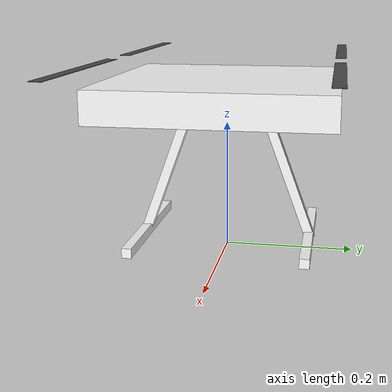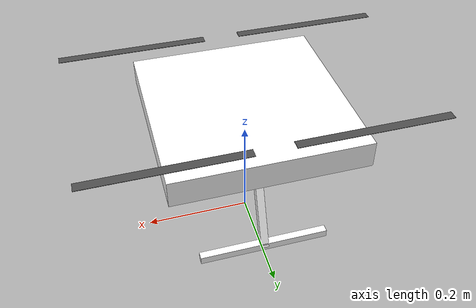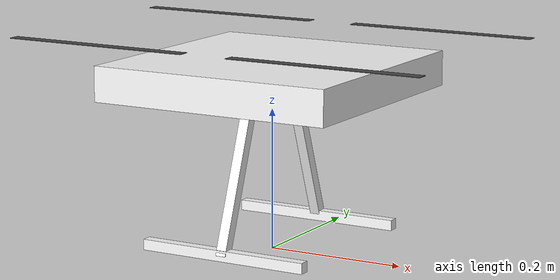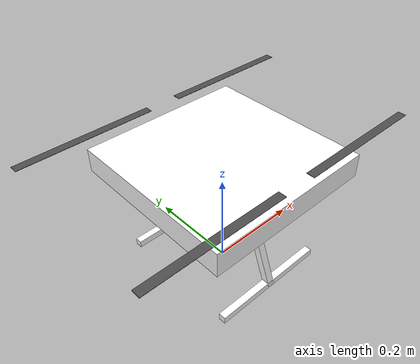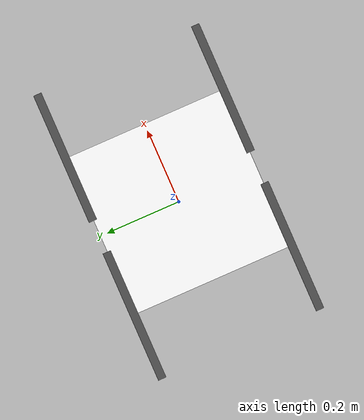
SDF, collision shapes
<?xml version="1.0" encoding="UTF-8"?>
<sdf version='1.9'>
  <model name='x500'>
    <pose>0 0 .24 0 0 0</pose>
    <self_collide>false</self_collide>
    <static>false</static>
    <link name="base_link">
      <inertial>
        <mass>2.0</mass>
        <inertia>
          <ixx>0.02166666666666667</ixx>
          <ixy>0</ixy>
          <ixz>0</ixz>
          <iyy>0.02166666666666667</iyy>
          <iyz>0</iyz>
          <izz>0.04000000000000001</izz>
        </inertia>
      </inertial>
      <gravity>true</gravity>
      <velocity_decay/>
      <visual name="base_link_visual">
        <pose>0 0 .025 0 0 3.141592654</pose>
        <geometry>
          <mesh>
            <scale>1 1 1</scale>
            <uri>meshes/NXP-HGD-CF.dae</uri>
          </mesh>
        </geometry>
      </visual>
      <visual name="5010_motor_base_0">
        <pose>0.174 0.174 .032 0 0 -.45</pose>
        <geometry>
          <mesh>
            <scale>1 1 1</scale>
            <uri>meshes/5010Base.dae</uri>
          </mesh>
        </geometry>
      </visual>
      <visual name="5010_motor_base_1">
        <pose>-0.174 0.174 .032 0 0 -.45</pose>
        <geometry>
          <mesh>
            <scale>1 1 1</scale>
            <uri>meshes/5010Base.dae</uri>
          </mesh>
        </geometry>
      </visual>
      <visual name="5010_motor_base_2">
        <pose>0.174 -0.174 .032 0 0 -.45</pose>
        <geometry>
          <mesh>
            <scale>1 1 1</scale>
            <uri>meshes/5010Base.dae</uri>
          </mesh>
        </geometry>
      </visual>
      <visual name="5010_motor_base_3">
        <pose>-0.174 -0.174 .032 0 0 -.45</pose>
        <geometry>
          <mesh>
            <scale>1 1 1</scale>
            <uri>meshes/5010Base.dae</uri>
          </mesh>
        </geometry>
      </visual>
      <visual name="NXP_FMUK66_FRONT">
        <pose>0.047 .001 .043 1 0 1.57</pose>
        <cast_shadows>false</cast_shadows>
        <geometry>
          <plane>
            <normal>0 0 1</normal>
            <size>.013 .007</size>
          </plane>
        </geometry>
        <material>
          <diffuse>1.0 1.0 1.0</diffuse>
          <specular>1.0 1.0 1.0</specular>
          <pbr>
            <metal>
              <albedo_map>materials/textures/nxp.png</albedo_map>
            </metal>
          </pbr>
        </material>
      </visual>
      <visual name="NXP_FMUK66_TOP">
        <pose>-0.023 0 .0515 0 0 -1.57</pose>
        <cast_shadows>false</cast_shadows>
        <geometry>
          <plane>
            <normal>0 0 1</normal>
            <size>.013 .007</size>
          </plane>
        </geometry>
        <material>
          <diffuse>1.0 1.0 1.0</diffuse>
          <specular>1.0 1.0 1.0</specular>
          <pbr>
            <metal>
              <albedo_map>materials/textures/nxp.png</albedo_map>
            </metal>
          </pbr>
        </material>
      </visual>
      <visual name="RDDRONE_FMUK66_TOP">
        <pose>-.03 0 .0515 0 0 -1.57</pose>
        <cast_shadows>false</cast_shadows>
        <geometry>
          <plane>
            <normal>0 0 1</normal>
            <size>.032 .0034</size>
          </plane>
        </geometry>
        <material>
          <diffuse>1.0 1.0 1.0</diffuse>
          <specular>1.0 1.0 1.0</specular>
          <pbr>
            <metal>
              <albedo_map>materials/textures/rd.png</albedo_map>
            </metal>
          </pbr>
        </material>
      </visual>
      <collision name="base_link_collision_0">
        <pose>0 0 .007 0 0 0</pose>
        <geometry>
          <box>
            <size>0.35355339059327373 0.35355339059327373 0.05</size>
          </box>
        </geometry>
        <surface>
          <contact>
            <ode>
              <min_depth>0.001</min_depth>
              <max_vel>0</max_vel>
            </ode>
          </contact>
          <friction>
            <ode/>
          </friction>
        </surface>
      </collision>
      <collision name="base_link_collision_1">
        <pose>0 -0.098 -.123 -0.35 0 0</pose>
        <geometry>
          <box>
            <size>0.015 0.015 0.21</size>
          </box>
        </geometry>
        <surface>
          <contact>
            <ode>
              <min_depth>0.001</min_depth>
              <max_vel>0</max_vel>
            </ode>
          </contact>
          <friction>
            <ode/>
          </friction>
        </surface>
      </collision>
      <collision name="base_link_collision_2">
        <pose>0 0.098 -.123 0.35 0 0</pose>
        <geometry>
          <box>
            <size>0.015 0.015 0.21</size>
          </box>
        </geometry>
        <surface>
          <contact>
            <ode>
              <min_depth>0.001</min_depth>
              <max_vel>0</max_vel>
            </ode>
          </contact>
          <friction>
            <ode/>
          </friction>
        </surface>
      </collision>
      <collision name="base_link_collision_3">
        <pose>0 -0.132 -.2195 0 0 0</pose>
        <geometry>
          <box>
            <size>0.25 0.015 0.015</size>
          </box>
        </geometry>
        <surface>
          <contact>
            <ode>
              <min_depth>0.001</min_depth>
              <max_vel>0</max_vel>
            </ode>
          </contact>
          <friction>
            <ode/>
          </friction>
        </surface>
      </collision>
      <collision name="base_link_collision_4">
        <pose>0 0.132 -.2195 0 0 0</pose>
        <geometry>
          <box>
            <size>0.25 0.015 0.015</size>
          </box>
        </geometry>
        <surface>
          <contact>
            <ode>
              <min_depth>0.001</min_depth>
              <max_vel>0</max_vel>
            </ode>
          </contact>
          <friction>
            <ode/>
          </friction>
        </surface>
      </collision>
    </link>
    <link name="rotor_0">
      <gravity>true</gravity>
      <self_collide>false</self_collide>
      <velocity_decay/>
      <pose>0.174 -0.174 0.06 0 0 0</pose>
      <inertial>
          <mass>0.016076923076923075</mass>
          <inertia>
            <ixx>3.8464910483993325e-07</ixx>
            <iyy>2.6115851691700804e-05</iyy>
            <izz>2.649858234714004e-05</izz>
          </inertia>
        </inertial>
      <visual name="rotor_0_visual">
        <pose>-0.022 -0.14638461538461536 -0.016 0 0 0</pose>
        <geometry>
          <mesh>
            <scale>0.8461538461538461 0.8461538461538461 0.8461538461538461</scale>
            <uri>meshes/1345_prop_ccw.stl</uri>
          </mesh>
        </geometry>
        <material>
          <script>
            <name>Gazebo/DarkGrey</name>
            <uri>file://media/materials/scripts/gazebo.material</uri>
          </script>
        </material>
      </visual>
      <visual name="rotor_0_visual_motor_bell">
        <pose>0 0 -.032 0 0 0</pose>
        <geometry>
          <mesh>
            <scale>1 1 1</scale>
            <uri>meshes/5010Bell.dae</uri>
          </mesh>
        </geometry>
      </visual>
      <collision name="rotor_0_collision">
        <pose>0 0 0 0 0 0 </pose>
        <geometry>
          <box>
            <size>0.2792307692307692 0.016923076923076923 0.0008461538461538462</size>
          </box>
        </geometry>
        <surface>
          <contact>
            <ode>
              <min_depth>0.001</min_depth>
              <max_vel>0</max_vel>
            </ode>
          </contact>
          <friction>
            <ode/>
          </friction>
        </surface>
      </collision>
    </link>
    <joint name="rotor_0_joint" type="revolute">
      <parent>base_link</parent>
      <child>rotor_0</child>
      <axis>
        <xyz>0 0 1</xyz>
        <limit>
          <lower>-1e+16</lower>
          <upper>1e+16</upper>
        </limit>
        <dynamics>
          <spring_reference>0</spring_reference>
          <spring_stiffness>0</spring_stiffness>
        </dynamics>
      </axis>
    </joint>
    <link name="rotor_1">
      <gravity>true</gravity>
      <self_collide>false</self_collide>
      <velocity_decay/>
      <pose>-0.174 0.174 0.06 0 0 0</pose>
      <inertial>
          <mass>0.016076923076923075</mass>
          <inertia>
            <ixx>3.8464910483993325e-07</ixx>
            <iyy>2.6115851691700804e-05</iyy>
            <izz>2.649858234714004e-05</izz>
          </inertia>
        </inertial>
      <visual name="rotor_1_visual">
        <pose>-0.022 -0.14638461538461536 -0.016 0 0 0</pose>
        <geometry>
          <mesh>
            <scale>0.8461538461538461 0.8461538461538461 0.8461538461538461</scale>
            <uri>meshes/1345_prop_ccw.stl</uri>
          </mesh>
        </geometry>
        <material>
          <script>
            <name>Gazebo/DarkGrey</name>
            <uri>file://media/materials/scripts/gazebo.material</uri>
          </script>
        </material>
      </visual>
      <visual name="rotor_1_visual_motor_top">
        <pose>0 0 -.032 0 0 0</pose>
        <geometry>
          <mesh>
            <scale>1 1 1</scale>
            <uri>meshes/5010Bell.dae</uri>
          </mesh>
        </geometry>
      </visual>
      <collision name="rotor_1_collision">
        <pose>0 0 0 0 0 0 </pose>
        <geometry>
          <box>
            <size>0.2792307692307692 0.016923076923076923 0.0008461538461538462</size>
          </box>
        </geometry>
        <surface>
          <contact>
            <ode>
              <min_depth>0.001</min_depth>
              <max_vel>0</max_vel>
            </ode>
          </contact>
          <friction>
            <ode/>
          </friction>
        </surface>
      </collision>
    </link>
    <joint name="rotor_1_joint" type="revolute">
      <parent>base_link</parent>
      <child>rotor_1</child>
      <axis>
        <xyz>0 0 1</xyz>
        <limit>
          <lower>-1e+16</lower>
          <upper>1e+16</upper>
        </limit>
        <dynamics>
          <spring_reference>0</spring_reference>
          <spring_stiffness>0</spring_stiffness>
        </dynamics>
      </axis>
    </joint>
    <link name="rotor_2">
      <gravity>true</gravity>
      <self_collide>false</self_collide>
      <velocity_decay/>
      <pose>0.174 0.174 0.06 0 0 0</pose>
      <inertial>
          <mass>0.016076923076923075</mass>
          <inertia>
            <ixx>3.8464910483993325e-07</ixx>
            <iyy>2.6115851691700804e-05</iyy>
            <izz>2.649858234714004e-05</izz>
          </inertia>
        </inertial>
      <visual name="rotor_2_visual">
        <pose>-0.022 -0.14638461538461536 -0.016 0 0 0</pose>
        <geometry>
          <mesh>
            <scale>0.8461538461538461 0.8461538461538461 0.8461538461538461</scale>
            <uri>meshes/1345_prop_cw.stl</uri>
          </mesh>
        </geometry>
        <material>
          <script>
            <name>Gazebo/DarkGrey</name>
            <uri>file://media/materials/scripts/gazebo.material</uri>
          </script>
        </material>
      </visual>
      <visual name="rotor_2_visual_motor_top">
        <pose>0 0 -.032 0 0 0</pose>
        <geometry>
          <mesh>
            <scale>1 1 1</scale>
            <uri>meshes/5010Bell.dae</uri>
          </mesh>
        </geometry>
      </visual>
      <collision name="rotor_2_collision">
        <pose>0 0 0 0 0 0 </pose>
        <geometry>
          <box>
            <size>0.2792307692307692 0.016923076923076923 0.0008461538461538462</size>
          </box>
        </geometry>
        <surface>
          <contact>
            <ode>
              <min_depth>0.001</min_depth>
              <max_vel>0</max_vel>
            </ode>
          </contact>
          <friction>
            <ode/>
          </friction>
        </surface>
      </collision>
    </link>
    <joint name="rotor_2_joint" type="revolute">
      <parent>base_link</parent>
      <child>rotor_2</child>
      <axis>
        <xyz>0 0 1</xyz>
        <limit>
          <lower>-1e+16</lower>
          <upper>1e+16</upper>
        </limit>
        <dynamics>
          <spring_reference>0</spring_reference>
          <spring_stiffness>0</spring_stiffness>
        </dynamics>
      </axis>
    </joint>
    <link name="rotor_3">
      <gravity>true</gravity>
      <self_collide>false</self_collide>
      <velocity_decay/>
      <pose>-0.174 -0.174 0.06 0 0 0</pose>
      <inertial>
          <mass>0.016076923076923075</mass>
          <inertia>
            <ixx>3.8464910483993325e-07</ixx>
            <iyy>2.6115851691700804e-05</iyy>
            <izz>2.649858234714004e-05</izz>
          </inertia>
        </inertial>
      <visual name="rotor_3_visual">
        <pose>-0.022 -0.14638461538461536 -0.016 0 0 0</pose>
        <geometry>
          <mesh>
            <scale>0.8461538461538461 0.8461538461538461 0.8461538461538461</scale>
            <uri>meshes/1345_prop_cw.stl</uri>
          </mesh>
        </geometry>
        <material>
          <script>
            <name>Gazebo/DarkGrey</name>
            <uri>file://media/materials/scripts/gazebo.material</uri>
          </script>
        </material>
      </visual>
      <visual name="rotor_3_visual_motor_top">
        <pose>0 0 -.032 0 0 0</pose>
        <geometry>
          <mesh>
            <scale>1 1 1</scale>
            <uri>meshes/5010Bell.dae</uri>
          </mesh>
        </geometry>
      </visual>
      <collision name="rotor_3_collision">
        <pose>0 0 0 0 0 0 </pose>
        <geometry>
          <box>
            <size>0.2792307692307692 0.016923076923076923 0.0008461538461538462</size>
          </box>
        </geometry>
        <surface>
          <contact>
            <ode>
              <min_depth>0.001</min_depth>
              <max_vel>0</max_vel>
            </ode>
          </contact>
          <friction>
            <ode/>
          </friction>
        </surface>
      </collision>
    </link>
    <joint name="rotor_3_joint" type="revolute">
      <parent>base_link</parent>
      <child>rotor_3</child>
      <axis>
        <xyz>0 0 1</xyz>
        <limit>
          <lower>-1e+16</lower>
          <upper>1e+16</upper>
        </limit>
        <dynamics>
          <spring_reference>0</spring_reference>
          <spring_stiffness>0</spring_stiffness>
        </dynamics>
      </axis>
    </joint>

    <!-- Camera Link -->

    <link name="camera_link">
      <pose>0.13 0 0.01 0 0 0</pose>
      <inertial>
        <mass>0.015</mass>
        <inertia>
          <ixx>0.000001</ixx>
          <ixy>0</ixy>
          <ixz>0</ixz>
          <iyy>0.000001</iyy>
          <iyz>0</iyz>
          <izz>0.000001</izz>
        </inertia>
      </inertial>
      <visual name="camera_visual">
        <geometry>
          <box>
            <size>0.02 0.03 0.02</size>
          </box>
        </geometry>
        <material>
          <ambient>0.2 0.2 0.2 1</ambient>
          <diffuse>0.2 0.2 0.2 1</diffuse>
          <specular>0.1 0.1 0.1 1</specular>
        </material>
      </visual>
      <collision name="camera_collision">
        <geometry>
          <box>
            <size>0.02 0.03 0.02</size>
          </box>
        </geometry>
      </collision>
      <sensor name="camera" type="camera">
        <camera>
          <horizontal_fov>1.047</horizontal_fov>
          <image>
            <width>640</width>
            <height>480</height>
            <format>R8G8B8</format>
          </image>
          <clip>
            <near>0.1</near>
            <far>100</far>
          </clip>
        </camera>
        <always_on>1</always_on>
        <update_rate>30</update_rate>
        <visualize>false</visualize>
        <topic>/drone/camera</topic>
      </sensor>
    </link>

    <!-- Camera Joint -->
    <joint name="camera_joint" type="fixed">
      <parent>base_link</parent>
      <child>camera_link</child>
    </joint>

    <!-- IMU Link -->
    <link name="imu_link">
      <pose>0 0 0 0 0 0</pose>
      <inertial>
        <mass>0.015</mass>
        <inertia>
          <ixx>0.000001</ixx>
          <ixy>0</ixy>
          <ixz>0</ixz>
          <iyy>0.000001</iyy>
          <iyz>0</iyz>
          <izz>0.000001</izz>
        </inertia>
      </inertial>
      <sensor name="imu_sensor" type="imu">
        <always_on>1</always_on>
        <update_rate>50</update_rate>
        <visualize>false</visualize>
        <topic>drone/imu</topic>
        <imu>
          <angular_velocity>
            <x>
              <noise type="gaussian">
                <mean>0.0</mean>
                <stddev>0.0002</stddev>
                <bias_mean>0.000075</bias_mean>
                <bias_stddev>0.0000008</bias_stddev>
              </noise>
            </x>
            <y>
              <noise type="gaussian">
                <mean>0.0</mean>
                <stddev>0.0002</stddev>
                <bias_mean>0.000075</bias_mean>
                <bias_stddev>0.0000008</bias_stddev>
              </noise>
            </y>
            <z>
              <noise type="gaussian">
                <mean>0.0</mean>
                <stddev>0.0002</stddev>
                <bias_mean>0.000075</bias_mean>
                <bias_stddev>0.0000008</bias_stddev>
              </noise>
            </z>
          </angular_velocity>
          <linear_acceleration>
            <x>
              <noise type="gaussian">
                <mean>0.0</mean>
                <stddev>0.017</stddev>
                <bias_mean>0.1</bias_mean>
                <bias_stddev>0.001</bias_stddev>
              </noise>
            </x>
            <y>
              <noise type="gaussian">
                <mean>0.0</mean>
                <stddev>0.017</stddev>
                <bias_mean>0.1</bias_mean>
                <bias_stddev>0.001</bias_stddev>
              </noise>
            </y>
            <z>
              <noise type="gaussian">
                <mean>0.0</mean>
                <stddev>0.017</stddev>
                <bias_mean>0.1</bias_mean>
                <bias_stddev>0.001</bias_stddev>
              </noise>
            </z>
          </linear_acceleration>
        </imu>
      </sensor>
    </link>

    <!-- IMU Joint -->
    <joint name="imu_joint" type="fixed">
      <parent>base_link</parent>
      <child>imu_link</child>
    </joint>

    <!-- GPS Link -->
    <link name="gps_link">
      <pose>0 0 0 0 0 0</pose>
      <inertial>
        <mass>0.015</mass>
        <inertia>
          <ixx>0.000001</ixx>
          <ixy>0</ixy>
          <ixz>0</ixz>
          <iyy>0.000001</iyy>
          <iyz>0</iyz>
          <izz>0.000001</izz>
        </inertia>
      </inertial>
     <sensor name="navsat_sensor" type="navsat">
        <always_on>1</always_on>
        <update_rate>10</update_rate>
        <visualize>false</visualize>
        <topic>drone/navsat</topic>
        <navsat>
          <position_sensing>
            <horizontal>
              <noise type="gaussian">
                <mean>0.0</mean>
                <stddev>0.5</stddev>
              </noise>
            </horizontal>
            <vertical>
              <noise type="gaussian">
                <mean>0.0</mean>
                <stddev>1.0</stddev>
              </noise>
            </vertical>
          </position_sensing>
          <velocity_sensing>
            <horizontal>
              <noise type="gaussian">
                <mean>0.0</mean>
                <stddev>0.1</stddev>
              </noise>
            </horizontal>
            <vertical>
              <noise type="gaussian">
                <mean>0.0</mean>
                <stddev>0.1</stddev>
              </noise>
            </vertical>
          </velocity_sensing>
        </navsat>
      </sensor>
    </link>

    <!-- GPS Joint -->
    <joint name="gps_joint" type="fixed">
      <parent>base_link</parent>
      <child>gps_link</child>
    </joint>

    <!-- Air pressure Link -->
    <link name="air_pressure_link">
      <pose>0 0 0 0 0 0</pose>
      <inertial>
        <mass>0.015</mass>
        <inertia>
          <ixx>0.000001</ixx>
          <ixy>0</ixy>
          <ixz>0</ixz>
          <iyy>0.000001</iyy>
          <iyz>0</iyz>
          <izz>0.000001</izz>
        </inertia>
      </inertial>
      <sensor name="air_pressure_sensor" type="air_pressure">
        <always_on>1</always_on>
        <update_rate>10</update_rate>
        <topic>drone/air_pressure</topic>
        <air_pressure>
          <pressure>
            <noise type="gaussian">
              <mean>0</mean>
              <stddev>0.01</stddev>
            </noise>
          </pressure>
        </air_pressure>
      </sensor>
    </link>

    <!-- Air pressure Joint -->
    <joint name="air_pressure_joint" type="fixed">
      <parent>base_link</parent>
      <child>air_pressure_link</child>
    </joint>

   <!-- Plugins -->
   <plugin filename="gz-sim-multicopter-motor-model-system" name="gz::sim::systems::MulticopterMotorModel">
      <jointName>rotor_0_joint</jointName>
      <linkName>rotor_0</linkName>
      <turningDirection>ccw</turningDirection>
      <timeConstantUp>0.0125</timeConstantUp>
      <timeConstantDown>0.025</timeConstantDown>
      <maxRotVelocity>1000.0</maxRotVelocity>
      <motorConstant>8.54858e-06</motorConstant>
      <momentConstant>0.016</momentConstant>
      <commandSubTopic>command/motor_speed</commandSubTopic>
      <motorNumber>0</motorNumber>
      <rotorDragCoefficient>8.06428e-05</rotorDragCoefficient>
      <rollingMomentCoefficient>1e-06</rollingMomentCoefficient>
      <rotorVelocitySlowdownSim>10</rotorVelocitySlowdownSim>
      <motorType>velocity</motorType>
    </plugin>
    <plugin filename="gz-sim-multicopter-motor-model-system" name="gz::sim::systems::MulticopterMotorModel">
      <jointName>rotor_1_joint</jointName>
      <linkName>rotor_1</linkName>
      <turningDirection>ccw</turningDirection>
      <timeConstantUp>0.0125</timeConstantUp>
      <timeConstantDown>0.025</timeConstantDown>
      <maxRotVelocity>1000.0</maxRotVelocity>
      <motorConstant>8.54858e-06</motorConstant>
      <momentConstant>0.016</momentConstant>
      <commandSubTopic>command/motor_speed</commandSubTopic>
      <motorNumber>1</motorNumber>
      <rotorDragCoefficient>8.06428e-05</rotorDragCoefficient>
      <rollingMomentCoefficient>1e-06</rollingMomentCoefficient>
      <rotorVelocitySlowdownSim>10</rotorVelocitySlowdownSim>
      <motorType>velocity</motorType>
    </plugin>
    <plugin filename="gz-sim-multicopter-motor-model-system" name="gz::sim::systems::MulticopterMotorModel">
      <jointName>rotor_2_joint</jointName>
      <linkName>rotor_2</linkName>
      <turningDirection>cw</turningDirection>
      <timeConstantUp>0.0125</timeConstantUp>
      <timeConstantDown>0.025</timeConstantDown>
      <maxRotVelocity>1000.0</maxRotVelocity>
      <motorConstant>8.54858e-06</motorConstant>
      <momentConstant>0.016</momentConstant>
      <commandSubTopic>command/motor_speed</commandSubTopic>
      <motorNumber>2</motorNumber>
      <rotorDragCoefficient>8.06428e-05</rotorDragCoefficient>
      <rollingMomentCoefficient>1e-06</rollingMomentCoefficient>
      <rotorVelocitySlowdownSim>10</rotorVelocitySlowdownSim>
      <motorType>velocity</motorType>
    </plugin>
    <plugin filename="gz-sim-multicopter-motor-model-system" name="gz::sim::systems::MulticopterMotorModel">
      <jointName>rotor_3_joint</jointName>
      <linkName>rotor_3</linkName>
      <turningDirection>cw</turningDirection>
      <timeConstantUp>0.0125</timeConstantUp>
      <timeConstantDown>0.025</timeConstantDown>
      <maxRotVelocity>1000.0</maxRotVelocity>
      <motorConstant>8.54858e-06</motorConstant>
      <momentConstant>0.016</momentConstant>
      <commandSubTopic>command/motor_speed</commandSubTopic>
      <motorNumber>3</motorNumber>
      <rotorDragCoefficient>8.06428e-05</rotorDragCoefficient>
      <rollingMomentCoefficient>1e-06</rollingMomentCoefficient>
      <rotorVelocitySlowdownSim>10</rotorVelocitySlowdownSim>
      <motorType>velocity</motorType>
    </plugin>

    <!-- Joint State Publisher Plugin -->
    <plugin filename="gz-sim-joint-state-publisher-system"
        name="gz::sim::systems::JointStatePublisher">
        <topic>drone/joint_states</topic>
    </plugin>

    <!-- Pose Publisher Plugin -->
    <plugin filename="gz-sim-pose-publisher-system"
            name="gz::sim::systems::PosePublisher">
      <publish_link_pose>true</publish_link_pose>
      <publish_sensor_pose>true</publish_sensor_pose>
      <publish_collision_pose>false</publish_collision_pose>
      <publish_visual_pose>false</publish_visual_pose>
      <publish_nested_model_pose>true</publish_nested_model_pose>
      <update_frequency>50</update_frequency>
    </plugin>

    <!-- Sensors plugins -->
    <plugin filename="gz-sim-imu-system"
        name="gz::sim::systems::Imu">
    </plugin>
    <plugin filename="gz-sim-navsat-system"
        name="gz::sim::systems::NavSat">
    </plugin>
    <plugin filename="gz-sim-air-pressure-system"
            name="gz::sim::systems::AirPressure">
    </plugin>

    <!-- Drone controller -->
    <plugin filename="gz-sim-multicopter-control-system"
            name="gz::sim::systems::MulticopterVelocityControl">
      <robotNamespace>drone</robotNamespace>
      <commandSubTopic>cmd_vel</commandSubTopic>
      <motorControlPubTopic>command/motor_speed</motorControlPubTopic>
      <enableSubTopic>enable</enableSubTopic>
      <comLinkName>base_link</comLinkName>

      <!-- Rotor Configuration (REQUIRED) -->
      <rotorConfiguration>
        <rotor>
          <jointName>rotor_0_joint</jointName>
          <forceConstant>8.54858e-06</forceConstant>
          <momentConstant>0.016</momentConstant>
          <direction>1</direction>
        </rotor>
        <rotor>
          <jointName>rotor_1_joint</jointName>
          <forceConstant>8.54858e-06</forceConstant>
          <momentConstant>0.016</momentConstant>
          <direction>1</direction>
        </rotor>
        <rotor>
          <jointName>rotor_2_joint</jointName>
          <forceConstant>8.54858e-06</forceConstant>
          <momentConstant>0.016</momentConstant>
          <direction>-1</direction>
        </rotor>
        <rotor>
          <jointName>rotor_3_joint</jointName>
          <forceConstant>8.54858e-06</forceConstant>
          <momentConstant>0.016</momentConstant>
          <direction>-1</direction>
        </rotor>
      </rotorConfiguration>

      <!-- Controller Gains -->
      <velocityGain>2.7 2.7 2.7</velocityGain>
      <attitudeGain>2.0 2.0 0.25</attitudeGain>
      <angularRateGain>0.4 0.4 0.4</angularRateGain>

      <!-- Limits -->
      <maximumLinearAcceleration>2 2 2</maximumLinearAcceleration>
      <maximumLinearVelocity>5 5 5</maximumLinearVelocity>
      <maximumAngularVelocity>3 3 3</maximumAngularVelocity>
    </plugin>
  </model>
</sdf>
